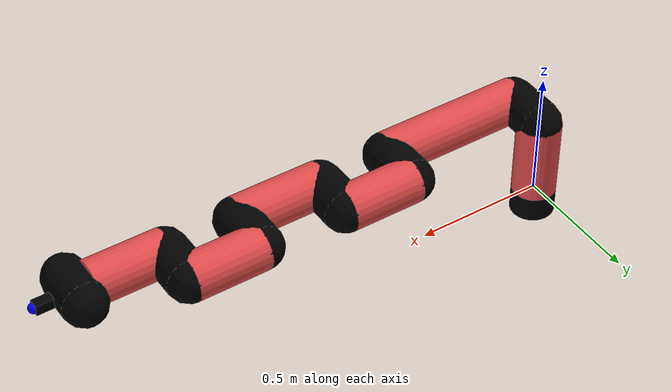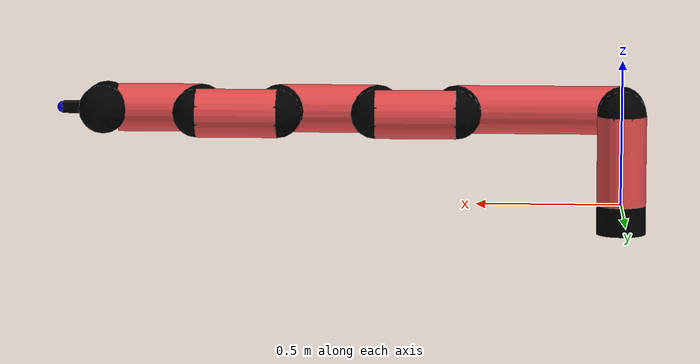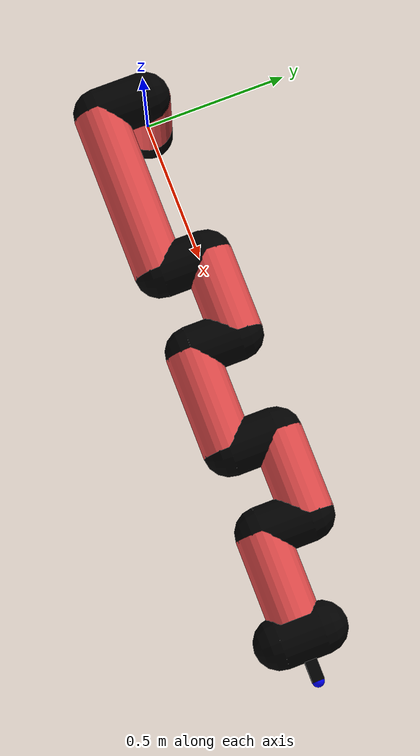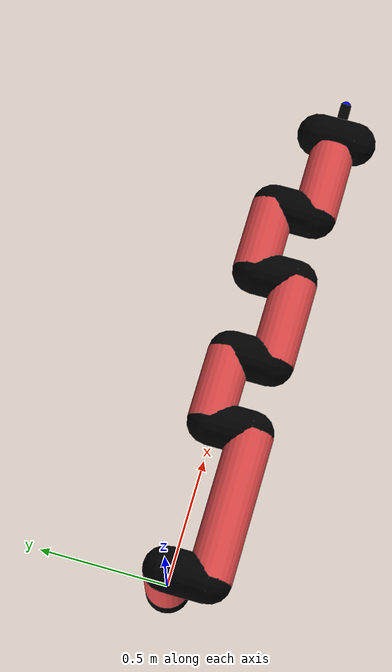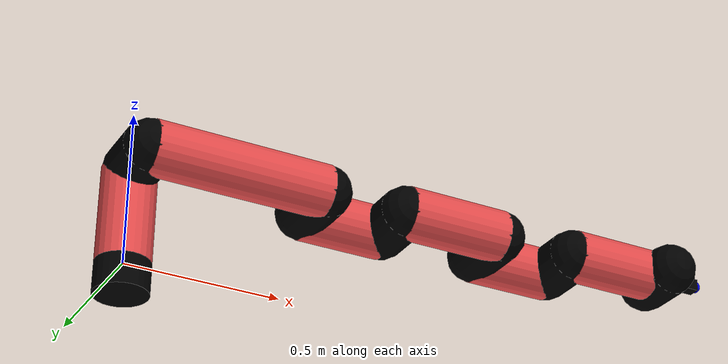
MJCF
<mujoco model="manipulator">
		<compiler angle="degree" coordinate="local" inertiafromgeom="auto" meshdir="meshes/"/>
		<option gravity="0 0 0" integrator="RK4" iterations="30" timestep="0.01"/>

		<default>
		<joint armature="1" limited="true" stiffness="10" damping="15" frictionloss="5.0"/>
		<geom conaffinity="1" condim="3" contype="1" friction=".5 .1 .1" margin="0.002"/>
		<motor ctrllimited="true"/>
		<position ctrllimited="true"/>
		</default>

		<asset>
		<texture builtin="gradient" height="100" rgb1="1.0 1.0 1.0" rgb2="1.0 1.0 1.0" type="skybox" width="100"/>
		<texture builtin="flat" height="32" name="arm_tex" rgb1="0.9 0.3 0.3" type="2d" width="32"/>
		<texture builtin="flat" height="32" name="gripper_tex" rgb1="0.0 0.0 0.0" type="cube" width="32"/>

		<material name="arm_mat" shininess="0.1" specular="0.1" texture="arm_tex"/>
		<material name="gripper_mat" shininess="1" specular="1" texture="gripper_tex"/>
		</asset>

		<worldbody>
		<light cutoff="45" diffuse=".8 .8 .8" dir="0 0.16 -1" directional="false" name="light" pos="0 -2.0 8.0" specular="0.3 0.3 0.3"/>

		<body name="base_link" pos="0 0 -0.1">
		<geom fromto="0 0 0 0 0 0.1" material="arm_mat" name="base_link" rgba="0.0 0.0 0.0 1" size="0.085" type="cylinder"/>
		</body>

		<body name="l1" pos="0 0 0">
<geom fromto="0 0 0 0 0 0.31" material="arm_mat" name="l1" rgba="0.9 0.3 0.3 1" size="0.085" type="cylinder"/>
<geom fromto="0 0 0.31 0 -0.16 0.31" material="arm_mat" name="l1_ex" rgba="0.0 0.0 0.0 1" size="0.085" type="capsule"/>
<joint axis="0 0 1" name="j1" pos="0 0 0" range="-90 90" damping="24.62" frictionloss="7.81"/>

<body name="l2" pos="0 -0.16 0.31">
<geom fromto="0 0 0 0.57 0 0" material="arm_mat" name="l2" rgba="0.9 0.3 0.3 1" size="0.085" type="cylinder"/>
<geom fromto="0.57 0 0 0.57 0.16 0" material="arm_mat" name="l2_ex" rgba="0.0 0.0 0.0 1" size="0.085" type="capsule"/>
<joint axis="0.0 1.0 0.0" name="j2" pos="0 0 0" range="-90 60" damping="25.62" frictionloss="11.82"/>

<body name="l3" pos="0.57 0.16 0">
<geom fromto="0 0 0 0.28 0 0" material="arm_mat" name="l3" rgba="0.9 0.3 0.3 1" size="0.085" type="cylinder"/>
<geom fromto="0.28 0 0 0.28 -0.16 0" material="arm_mat" name="l3_ex" rgba="0.0 0.0 0.0 1" size="0.085" type="capsule"/>
<joint axis="0.0 1.0 0.0" name="j3" pos="0 0 0" range="-30 60" damping="22.56" frictionloss="10.94"/>

<body name="l4" pos="0.28 -0.16 0">
<geom fromto="0 0 0 0.34 0 0" material="arm_mat" name="l4" rgba="0.9 0.3 0.3 1" size="0.085" type="cylinder"/>
<geom fromto="0.34 0 0 0.34 0.16 0" material="arm_mat" name="l4_ex" rgba="0.0 0.0 0.0 1" size="0.085" type="capsule"/>
<joint axis="0.0 1.0 0.0" name="j4" pos="0 0 0" range="-30 60" damping="34.73" frictionloss="12.04"/>

<body name="l5" pos="0.34 0.16 0">
<geom fromto="0 0 0 0.28 0 0" material="arm_mat" name="l5" rgba="0.9 0.3 0.3 1" size="0.085" type="cylinder"/>
<geom fromto="0.28 0 0 0.28 -0.16 0" material="arm_mat" name="l5_ex" rgba="0.0 0.0 0.0 1" size="0.085" type="capsule"/>
<joint axis="0.0 1.0 0.0" name="j5" pos="0 0 0" range="-30 60" damping="31.63" frictionloss="9.93"/>

<body name="l6" pos="0.28 -0.16 0">
<geom fromto="0 0 0 0.29 0 0" material="arm_mat" name="l6" rgba="0.9 0.3 0.3 1" size="0.085" type="cylinder"/>
<joint axis="0.0 1.0 0.0" name="j6" pos="0 0 0" range="-30 60" damping="28.37" frictionloss="11.94"/>

<body name="gripper" pos="0.29 0 0">
<geom fromto="0.05 -0.07 0 0.05 0.07 0" material="gripper_mat" name="gripper" rgba="0.0 0.0 0.0 1" size="0.085" type="capsule"/><joint axis="1 0 0" name="j7" pos="0 0 0" range="-90 90" damping="15" frictionloss="5.0"/><body name="finger" pos="0.1 0 0">
<geom fromto="0 0.0 0 0.1 0.0 0" material="gripper_mat" name="finger" rgba="0.0 0.0 0.0 1" size="0.020 0.06 0.06" type="box"/>
</body>
<site name="current" pos="0.2 0. 0.0" rgba="0. 0. 1.0 1" size="0.02" type="sphere"/>
</body>
</body>
</body>
</body>
</body>
</body>
</body>
</worldbody>
<actuator>
<motor ctrllimited="true" ctrlrange="-1.0 1.0" joint="j1" gear="70.41"/>
<motor ctrllimited="true" ctrlrange="-1.0 1.0" joint="j2" gear="61.61"/>
<motor ctrllimited="true" ctrlrange="-1.0 1.0" joint="j3" gear="84.61"/>
<motor ctrllimited="true" ctrlrange="-1.0 1.0" joint="j4" gear="76.95"/>
<motor ctrllimited="true" ctrlrange="-1.0 1.0" joint="j5" gear="67.74"/>
<motor ctrllimited="true" ctrlrange="-1.0 1.0" joint="j6" gear="63.24"/>
<motor ctrllimited="true" ctrlrange="-1.0 1.0" joint="j7" gear="80"/>
</actuator>
</mujoco>
